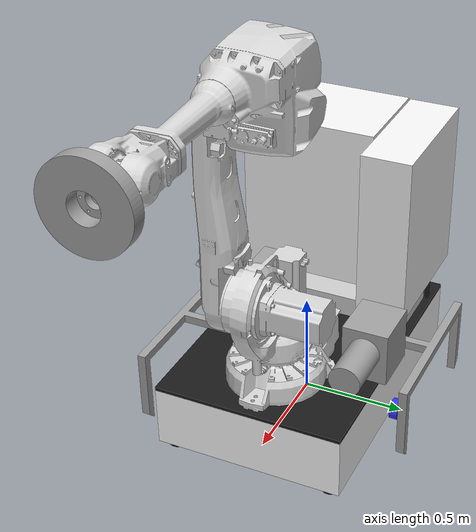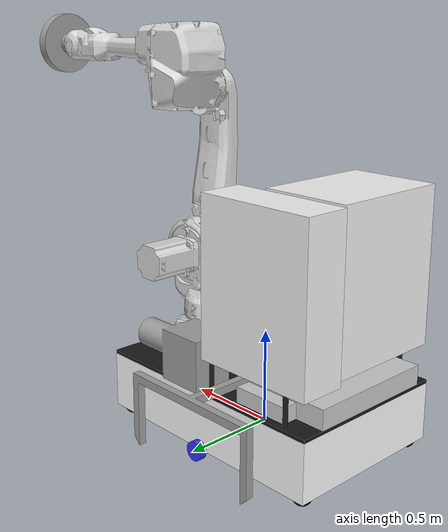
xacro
<?xml version="1.0"?>
<robot xmlns:xacro="http://www.ros.org/wiki/xacro" name="abb_arm">
    <gazebo>
        <plugin name="gz::sim::systems::DiffDrive" filename="gz-sim-diff-drive-system">
            <!-- Wheel Information -->
            <left_joint>left_wheel_joint</left_joint>
            <right_joint>right_wheel_joint</right_joint>
            <wheel_separation>1.23</wheel_separation>
            <wheel_radius>0.05</wheel_radius>

            <!-- Limits -->
            <max_linear_acceleration>0.66</max_linear_acceleration>

            <!-- Input -->
            <topic>/cmd_vel</topic>

            <!-- Output -->
            <frame_id>odom</frame_id>
            <child_frame_id>base_link</child_frame_id>
            <odom_topic>/odom</odom_topic>
            <odom_publisher_frequency>100</odom_publisher_frequency>

            <tf_topic>/tf</tf_topic>

        </plugin>

        <plugin name="gz::sim::systems::JointStatePublisher" filename="gz-sim-joint-state-publisher-system">
            <topic>/joint_states</topic>
            <joint_name>left_wheel_joint</joint_name>
            <joint_name>right_wheel_joint</joint_name>
        </plugin>
    </gazebo>

    <link name="base_link"/>

    <!-- Include color macros -->
    <xacro:include filename="$(find abb_arm_description)/urdf/colours.xacro"/>

    <!-- Include inertial macros -->
    <xacro:include filename="$(find abb_arm_description)/urdf/inertial_macros.xacro"/>

    <!-- Include platform -->

    <!-- Include abb arm -->
    <xacro:include filename="$(find abb_arm_description)/urdf/abb_arm.xacro"/>

    <!-- Include major components -->
    <xacro:include filename="$(find abb_arm_description)/urdf/major_components.xacro"/>

    <!-- Include mir platform -->
    <xacro:include filename="$(find abb_arm_description)/urdf/mir1350_rough.xacro"/>

    <!-- Include ros2_control -->
    <xacro:include filename="$(find abb_arm_description)/urdf/ros2_control.xacro"/>
</robot>

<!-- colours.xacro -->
<robot xmlns:xacro="http://www.ros.org/wiki/xacro">
    <material name="white">
        <color rgba="1 1 1 1"/>
    </material>

    <material name="orange">
        <color rgba="1 0.3 0.1 1"/>
    </material>

    <material name="blue">
        <color rgba="0.2 0.2 1 1"/>
    </material>

    <material name="black">
        <color rgba="0 0 0 1"/>
    </material>

    <material name="red">
        <color rgba="1 0 0 1"/>
    </material>
</robot>

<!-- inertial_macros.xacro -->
<robot xmlns:xacro="http://www.ros.org/wiki/xacro" >

    <!-- Specify some standard inertial calculations https://en.wikipedia.org/wiki/List_of_moments_of_inertia -->
    <!-- These make use of xacro's mathematical functionality -->

    <xacro:macro name="inertial_sphere" params="mass radius *origin">
        <inertial>
            <xacro:insert_block name="origin"/>
            <mass value="${mass}" />
            <inertia ixx="${(2/5) * mass * (radius*radius)}" ixy="0.0" ixz="0.0"
                    iyy="${(2/5) * mass * (radius*radius)}" iyz="0.0"
                    izz="${(2/5) * mass * (radius*radius)}" />
        </inertial>
    </xacro:macro>

    <xacro:macro name="inertial_box" params="mass x y z *origin">
        <inertial>
            <xacro:insert_block name="origin"/>
            <mass value="${mass}" />
            <inertia ixx="${(1/12) * mass * (y*y+z*z)}" ixy="0.0" ixz="0.0"
                    iyy="${(1/12) * mass * (x*x+z*z)}" iyz="0.0"
                    izz="${(1/12) * mass * (x*x+y*y)}" />
        </inertial>
    </xacro:macro>

    <xacro:macro name="inertial_cylinder" params="mass length radius *origin">
        <inertial>
            <xacro:insert_block name="origin"/>
            <mass value="${mass}" />
            <inertia ixx="${(1/12) * mass * (3*radius*radius + length*length)}" ixy="0.0" ixz="0.0"
                    iyy="${(1/12) * mass * (3*radius*radius + length*length)}" iyz="0.0"
                    izz="${(1/2) * mass * (radius*radius)}" />
        </inertial>
    </xacro:macro>

</robot>

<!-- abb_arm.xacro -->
<!-- Generated using onshape-to-robot -->
<!-- Onshape document_id f0912ad76048a2e7ed12d76c -->
<robot xmlns:xacro="http://www.ros.org/wiki/xacro" name="abb_arm">
  <!-- Link irb4600_60kg_205_base_cad_rev05_v1 -->
  <link name="irb4600_60kg_205_base_cad_rev05_v1">
    <inertial>
      <origin xyz="-0.321182 -0.0353324 -0.305087" rpy="0 0 0"/>
      <mass value="81.759"/>
      <inertia ixx="1.14136" ixy="0.113422" ixz="-0.0184365" iyy="2.30969" iyz="-0.00337268" izz="3.14598"/>
    </inertial>
    <!-- Part irb4600_60kg_205_base_cad_rev05_v1 -->
    <visual>
      <origin xyz="-0.223542 -0.043641 -0.379314" rpy="0.00762494 -0.0869335 -0.0875981"/>
      <geometry>
        <mesh filename="file://$(find abb_arm_description)/assets/abb_arm/irb4600_60kg_205_base_cad_rev05_v1.stl"/>
      </geometry>
      <material name="irb4600_60kg_205_base_cad_rev05_v1_material">
        <color rgba="0.843137 0.843137 0.843137 1"/>
      </material>
    </visual>
    <collision>
      <origin xyz="-0.223542 -0.043641 -0.379314" rpy="0.00762494 -0.0869335 -0.0875981"/>
      <geometry>
        <mesh filename="file://$(find abb_arm_description)/assets/abb_arm/irb4600_60kg_205_base_cad_rev05_v1.stl"/>
      </geometry>
    </collision>
  </link>
  <!-- Link irb4600_60kg_205_link1_cad_rev04_v1 -->
  <link name="irb4600_60kg_205_link1_cad_rev04_v1">
    <inertial>
      <origin xyz="0.0770381 -0.0246901 -0.240698" rpy="0 0 0"/>
      <mass value="114.511"/>
      <inertia ixx="3.00349" ixy="0.261576" ixz="0.808083" iyy="3.91333" iyz="-0.279337" izz="3.13182"/>
    </inertial>
    <!-- Part irb4600_60kg_205_link1_cad_rev04_v1 -->
    <visual>
      <origin xyz="4.32987e-15 7.77156e-16 0.1595" rpy="-3.14159 2.77556e-17 -1.09504e-17"/>
      <geometry>
        <mesh filename="file://$(find abb_arm_description)/assets/abb_arm/irb4600_60kg_205_link1_cad_rev04_v1.stl"/>
      </geometry>
      <material name="irb4600_60kg_205_link1_cad_rev04_v1_material">
        <color rgba="0.843137 0.843137 0.843137 1"/>
      </material>
    </visual>
    <collision>
      <origin xyz="4.32987e-15 7.77156e-16 0.1595" rpy="-3.14159 2.77556e-17 -1.09504e-17"/>
      <geometry>
        <mesh filename="file://$(find abb_arm_description)/assets/abb_arm/irb4600_60kg_205_link1_cad_rev04_v1.stl"/>
      </geometry>
    </collision>
  </link>
  <!-- Link irb4600_60kg_205_link2_cad_rev04_v1 -->
  <link name="irb4600_60kg_205_link2_cad_rev04_v1">
    <inertial>
      <origin xyz="9.44147e-05 -0.396751 -0.0480536" rpy="0 0 0"/>
      <mass value="75.819"/>
      <inertia ixx="5.85954" ixy="-0.000649047" ixz="-6.58104e-08" iyy="0.434415" iyz="-0.198731" izz="6.07168"/>
    </inertial>
    <!-- Part irb4600_60kg_205_link2_cad_rev04_v1 -->
    <visual>
      <origin xyz="-0.175 0.495 0.1225" rpy="1.5708 -3.41524e-17 -1.38778e-17"/>
      <geometry>
        <mesh filename="file://$(find abb_arm_description)/assets/abb_arm/irb4600_60kg_205_link2_cad_rev04_v1.stl"/>
      </geometry>
      <material name="irb4600_60kg_205_link2_cad_rev04_v1_material">
        <color rgba="0.843137 0.843137 0.843137 1"/>
      </material>
    </visual>
    <collision>
      <origin xyz="-0.175 0.495 0.1225" rpy="1.5708 -3.41524e-17 -1.38778e-17"/>
      <geometry>
        <mesh filename="file://$(find abb_arm_description)/assets/abb_arm/irb4600_60kg_205_link2_cad_rev04_v1.stl"/>
      </geometry>
    </collision>
  </link>
  <!-- Link irb4600_60kg_205_link3_cad_rev04_v1 -->
  <link name="irb4600_60kg_205_link3_cad_rev04_v1">
    <inertial>
      <origin xyz="0.0407131 0.118762 -0.198467" rpy="0 0 0"/>
      <mass value="138.137"/>
      <inertia ixx="3.06752" ixy="-0.317854" ixz="-0.199072" iyy="3.08575" iyz="0.0381456" izz="3.75533"/>
    </inertial>
    <!-- Part irb4600_60kg_205_link3_cad_rev04_v1 -->
    <visual>
      <origin xyz="-0.175 -1.395 -0.1492" rpy="-1.5708 3.84892e-17 -1.38778e-17"/>
      <geometry>
        <mesh filename="file://$(find abb_arm_description)/assets/abb_arm/irb4600_60kg_205_link3_cad_rev04_v1.stl"/>
      </geometry>
      <material name="irb4600_60kg_205_link3_cad_rev04_v1_material">
        <color rgba="0.843137 0.843137 0.843137 1"/>
      </material>
    </visual>
    <collision>
      <origin xyz="-0.175 -1.395 -0.1492" rpy="-1.5708 3.84892e-17 -1.38778e-17"/>
      <geometry>
        <mesh filename="file://$(find abb_arm_description)/assets/abb_arm/irb4600_60kg_205_link3_cad_rev04_v1.stl"/>
      </geometry>
    </collision>
  </link>
  <!-- Link irb4600_60kg_205_link4_cad_rev04_v1 -->
  <link name="irb4600_60kg_205_link4_cad_rev04_v1">
    <inertial>
      <origin xyz="-0.00197572 0.00284651 -0.393132" rpy="0 0 0"/>
      <mass value="29.998"/>
      <inertia ixx="1.24629" ixy="-7.78483e-05" ixz="-0.0152437" iyy="1.29389" iyz="0.00617296" izz="0.143764"/>
    </inertial>
    <!-- Part irb4600_60kg_205_link4_cad_rev04_v1 -->
    <visual>
      <origin xyz="-2.08167e-16 1.57 0.5151" rpy="1.5708 1.5708 0"/>
      <geometry>
        <mesh filename="file://$(find abb_arm_description)/assets/abb_arm/irb4600_60kg_205_link4_cad_rev04_v1.stl"/>
      </geometry>
      <material name="irb4600_60kg_205_link4_cad_rev04_v1_material">
        <color rgba="0.843137 0.843137 0.843137 1"/>
      </material>
    </visual>
    <collision>
      <origin xyz="-2.08167e-16 1.57 0.5151" rpy="1.5708 1.5708 0"/>
      <geometry>
        <mesh filename="file://$(find abb_arm_description)/assets/abb_arm/irb4600_60kg_205_link4_cad_rev04_v1.stl"/>
      </geometry>
    </collision>
  </link>
  <!-- Link irb4600_60kg_205_link5_cad_rev04_v1 -->
  <link name="irb4600_60kg_205_link5_cad_rev04_v1">
    <inertial>
      <origin xyz="-0.00105077 0.00040032 -0.0635485" rpy="0 0 0"/>
      <mass value="4.058"/>
      <inertia ixx="0.00817587" ixy="-4.61387e-05" ixz="2.08952e-06" iyy="0.00900393" iyz="1.38141e-05" izz="0.0084813"/>
    </inertial>
    <!-- Part irb4600_60kg_205_link5_cad_rev04_v1 -->
    <visual>
      <origin xyz="-1.135 -1.57 -0.067" rpy="-1.5708 -3.79471e-18 -1.38778e-17"/>
      <geometry>
        <mesh filename="file://$(find abb_arm_description)/assets/abb_arm/irb4600_60kg_205_link5_cad_rev04_v1.stl"/>
      </geometry>
      <material name="irb4600_60kg_205_link5_cad_rev04_v1_material">
        <color rgba="0.843137 0.843137 0.843137 1"/>
      </material>
    </visual>
    <collision>
      <origin xyz="-1.135 -1.57 -0.067" rpy="-1.5708 -3.79471e-18 -1.38778e-17"/>
      <geometry>
        <mesh filename="file://$(find abb_arm_description)/assets/abb_arm/irb4600_60kg_205_link5_cad_rev04_v1.stl"/>
      </geometry>
    </collision>
  </link>
  <!-- Link irb4600_60kg_205_link6_cad_rev04_v1 -->
  <link name="irb4600_60kg_205_link6_cad_rev04_v1">
    <inertial>
      <origin xyz="-3.63266e-05 0.000333341 -0.119747" rpy="0 0 0"/>
      <mass value="5.718"/>
      <inertia ixx="0.0494659" ixy="7.19253e-06" ixz="1.27941e-05" iyy="0.0494712" iyz="2.70911e-05" izz="0.0870346"/>
    </inertial>
    <!-- Part polisher -->
    <visual>
      <origin xyz="8.04912e-16 1.5704 1.17" rpy="1.5708 1.5708 0"/>
      <geometry>
        <mesh filename="file://$(find abb_arm_description)/assets/abb_arm/polisher.stl"/>
      </geometry>
      <material name="polisher_material">
        <color rgba="0.627451 0.627451 0.627451 1"/>
      </material>
    </visual>
    <collision>
      <origin xyz="8.04912e-16 1.5704 1.17" rpy="1.5708 1.5708 0"/>
      <geometry>
        <mesh filename="file://$(find abb_arm_description)/assets/abb_arm/polisher.stl"/>
      </geometry>
    </collision>
    <!-- Part irb4600_60kg_205_link6_cad_rev04_v1 -->
    <visual>
      <origin xyz="1.66533e-16 1.57 1.2" rpy="1.5708 1.5708 0"/>
      <geometry>
        <mesh filename="file://$(find abb_arm_description)/assets/abb_arm/irb4600_60kg_205_link6_cad_rev04_v1.stl"/>
      </geometry>
      <material name="irb4600_60kg_205_link6_cad_rev04_v1_material">
        <color rgba="0.501961 0.501961 0.501961 1"/>
      </material>
    </visual>
    <collision>
      <origin xyz="1.66533e-16 1.57 1.2" rpy="1.5708 1.5708 0"/>
      <geometry>
        <mesh filename="file://$(find abb_arm_description)/assets/abb_arm/irb4600_60kg_205_link6_cad_rev04_v1.stl"/>
      </geometry>
    </collision>
    <!-- Part polisher_2 -->
    <visual>
      <origin xyz="7.35523e-16 1.57 1.2" rpy="1.5708 1.5708 0"/>
      <geometry>
        <mesh filename="file://$(find abb_arm_description)/assets/abb_arm/polisher__2.stl"/>
      </geometry>
      <material name="polisher_2_material">
        <color rgba="0.627451 0.627451 0.627451 1"/>
      </material>
    </visual>
    <collision>
      <origin xyz="7.35523e-16 1.57 1.2" rpy="1.5708 1.5708 0"/>
      <geometry>
        <mesh filename="file://$(find abb_arm_description)/assets/abb_arm/polisher__2.stl"/>
      </geometry>
    </collision>
  </link>
  <!-- Joint from irb4600_60kg_205_link5_cad_rev04_v1 to irb4600_60kg_205_link6_cad_rev04_v1 -->
  <joint name="joint6" type="revolute">
    <origin xyz="0.065 -2.22045e-16 -0.067" rpy="-3.14159 1.5708 0"/>
    <parent link="irb4600_60kg_205_link5_cad_rev04_v1"/>
    <child link="irb4600_60kg_205_link6_cad_rev04_v1"/>
    <axis xyz="0 0 1"/>
    <limit effort="10000" velocity="10" lower="-3.141592653589793" upper="3.141592653589793"/>
  </joint>
  <!-- Joint from irb4600_60kg_205_link4_cad_rev04_v1 to irb4600_60kg_205_link5_cad_rev04_v1 -->
  <joint name="joint5" type="revolute">
    <origin xyz="-0.067 0 -0.6199" rpy="-3.14159 1.5708 0"/>
    <parent link="irb4600_60kg_205_link4_cad_rev04_v1"/>
    <child link="irb4600_60kg_205_link5_cad_rev04_v1"/>
    <axis xyz="0 0 1"/>
    <limit effort="10000" velocity="10" lower="-3.141592653589793" upper="3.141592653589793"/>
  </joint>
  <!-- Joint from irb4600_60kg_205_link3_cad_rev04_v1 to irb4600_60kg_205_link4_cad_rev04_v1 -->
  <joint name="joint4" type="revolute">
    <origin xyz="0.3401 0.175 -0.1492" rpy="3.14159 1.5708 0"/>
    <parent link="irb4600_60kg_205_link3_cad_rev04_v1"/>
    <child link="irb4600_60kg_205_link4_cad_rev04_v1"/>
    <axis xyz="0 0 1"/>
    <limit effort="10000" velocity="10" lower="-3.141592653589793" upper="3.141592653589793"/>
  </joint>
  <!-- Joint from irb4600_60kg_205_link2_cad_rev04_v1 to irb4600_60kg_205_link3_cad_rev04_v1 -->
  <joint name="joint3" type="revolute">
    <origin xyz="1.38778e-17 -0.9 -0.0267" rpy="-3.14159 3.06829e-17 1.63897e-14"/>
    <parent link="irb4600_60kg_205_link2_cad_rev04_v1"/>
    <child link="irb4600_60kg_205_link3_cad_rev04_v1"/>
    <axis xyz="0 0 1"/>
    <limit effort="10000" velocity="10" lower="-3.141592653589793" upper="3.141592653589793"/>
  </joint>
  <!-- Joint from irb4600_60kg_205_link1_cad_rev04_v1 to irb4600_60kg_205_link2_cad_rev04_v1 -->
  <joint name="joint2" type="revolute">
    <origin xyz="0.175 0.1225 -0.3355" rpy="1.5708 -1.6237e-15 -1.44199e-17"/>
    <parent link="irb4600_60kg_205_link1_cad_rev04_v1"/>
    <child link="irb4600_60kg_205_link2_cad_rev04_v1"/>
    <axis xyz="0 0 1"/>
    <limit effort="10000" velocity="10" lower="-3.141592653589793" upper="3.141592653589793"/>
  </joint>
  <!-- Joint from irb4600_60kg_205_base_cad_rev05_v1 to irb4600_60kg_205_link1_cad_rev04_v1 -->
  <joint name="joint1" type="revolute">
    <origin xyz="-0.237443 -0.043641 -0.220421" rpy="-3.13397 -0.0869335 -0.0875981"/>
    <parent link="irb4600_60kg_205_base_cad_rev05_v1"/>
    <child link="irb4600_60kg_205_link1_cad_rev04_v1"/>
    <axis xyz="0 0 1"/>
    <limit effort="10000" velocity="10" lower="-3.141592653589793" upper="3.141592653589793"/>
  </joint>
  <!-- Joint from base_link to base_cad -->
  <!-- Joint from base_plate to base_cad -->
  <joint name="base_plate_base_cad_joint" type="fixed">
    <origin xyz="0.62 0.08 0.391" rpy="0 0.08 0.1"/>
    <parent link="base_plate__mild_steel"/>
    <child link="irb4600_60kg_205_base_cad_rev05_v1"/>
  </joint>
</robot>

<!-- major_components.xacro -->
<!-- Generated using onshape-to-robot -->
<!-- Onshape document_id f0912ad76048a2e7ed12d76c -->
<robot xmlns:xacro="http://wiki.ros.org/xacro" name="major_components">
  <!-- Link base_plate__mild_steel -->
  <link name="base_plate__mild_steel">
    <inertial>
      <origin xyz="-0.295151 0.0518164 0.226115" rpy="0 0 0"/>
      <mass value="591"/>
      <inertia ixx="84.5177" ixy="-4.82016" ixz="9.4146" iyy="98.5566" iyz="-7.20458" izz="93.259"/>
    </inertial>
    <!-- Part right_leg -->
    <visual>
      <origin xyz="0 0 0" rpy="0 -0 0"/>
      <geometry>
        <mesh filename="file://$(find abb_arm_description)/assets/major_components/right_leg.stl"/>
      </geometry>
      <material name="right_leg_material">
        <color rgba="0.627451 0.627451 0.627451 1"/>
      </material>
    </visual>
    <collision>
      <origin xyz="0 0 0" rpy="0 -0 0"/>
      <geometry>
        <mesh filename="file://$(find abb_arm_description)/assets/major_components/right_leg.stl"/>
      </geometry>
    </collision>
    <!-- Part vacuum_pump -->
    <visual>
      <origin xyz="0 0 0" rpy="0 -0 0"/>
      <geometry>
        <mesh filename="file://$(find abb_arm_description)/assets/major_components/vacuum_pump.stl"/>
      </geometry>
      <material name="vacuum_pump_material">
        <color rgba="0.627451 0.627451 0.627451 1"/>
      </material>
    </visual>
    <collision>
      <origin xyz="0 0 0" rpy="0 -0 0"/>
      <geometry>
        <mesh filename="file://$(find abb_arm_description)/assets/major_components/vacuum_pump.stl"/>
      </geometry>
    </collision>
    <!-- Part system_controller -->
    <visual>
      <origin xyz="0 0 0" rpy="0 -0 0"/>
      <geometry>
        <mesh filename="file://$(find abb_arm_description)/assets/major_components/system_controller.stl"/>
      </geometry>
      <material name="system_controller_material">
        <color rgba="0.960784 0.960784 0.964706 1"/>
      </material>
    </visual>
    <collision>
      <origin xyz="0 0 0" rpy="0 -0 0"/>
      <geometry>
        <mesh filename="file://$(find abb_arm_description)/assets/major_components/system_controller.stl"/>
      </geometry>
    </collision>
    <!-- Part compressor -->
    <visual>
      <origin xyz="0 0 0" rpy="0 -0 0"/>
      <geometry>
        <mesh filename="file://$(find abb_arm_description)/assets/major_components/compressor.stl"/>
      </geometry>
      <material name="compressor_material">
        <color rgba="0.627451 0.627451 0.627451 1"/>
      </material>
    </visual>
    <collision>
      <origin xyz="0 0 0" rpy="0 -0 0"/>
      <geometry>
        <mesh filename="file://$(find abb_arm_description)/assets/major_components/compressor.stl"/>
      </geometry>
    </collision>
    <!-- Part abb_controller -->
    <visual>
      <origin xyz="0 0 0" rpy="0 -0 0"/>
      <geometry>
        <mesh filename="file://$(find abb_arm_description)/assets/major_components/abb_controller.stl"/>
      </geometry>
      <material name="abb_controller_material">
        <color rgba="0.960784 0.960784 0.964706 1"/>
      </material>
    </visual>
    <collision>
      <origin xyz="0 0 0" rpy="0 -0 0"/>
      <geometry>
        <mesh filename="file://$(find abb_arm_description)/assets/major_components/abb_controller.stl"/>
      </geometry>
    </collision>
    <!-- Part counter_weight_2 -->
    <visual>
      <origin xyz="0 0 0" rpy="0 -0 0"/>
      <geometry>
        <mesh filename="file://$(find abb_arm_description)/assets/major_components/counter_weight_2.stl"/>
      </geometry>
      <material name="counter_weight_2_material">
        <color rgba="0.796078 0.796078 0.796078 1"/>
      </material>
    </visual>
    <collision>
      <origin xyz="0 0 0" rpy="0 -0 0"/>
      <geometry>
        <mesh filename="file://$(find abb_arm_description)/assets/major_components/counter_weight_2.stl"/>
      </geometry>
    </collision>
    <!-- Part base_plate__mild_steel -->
    <visual>
      <origin xyz="0 0 0" rpy="0 -0 0"/>
      <geometry>
        <mesh filename="file://$(find abb_arm_description)/assets/major_components/base_plate__mild_steel.stl"/>
      </geometry>
      <material name="base_plate__mild_steel_material">
        <color rgba="0.1 0.1 0.1 1"/>
      </material>
    </visual>
    <collision>
      <origin xyz="0 0 0" rpy="0 -0 0"/>
      <geometry>
        <mesh filename="file://$(find abb_arm_description)/assets/major_components/base_plate__mild_steel.stl"/>
      </geometry>
    </collision>
    <!-- Part counter_weight_1 -->
    <visual>
      <origin xyz="0 0 0" rpy="0 -0 0"/>
      <geometry>
        <mesh filename="file://$(find abb_arm_description)/assets/major_components/counter_weight_1.stl"/>
      </geometry>
      <material name="counter_weight_1_material">
        <color rgba="0.796078 0.796078 0.796078 1"/>
      </material>
    </visual>
    <collision>
      <origin xyz="0 0 0" rpy="0 -0 0"/>
      <geometry>
        <mesh filename="file://$(find abb_arm_description)/assets/major_components/counter_weight_1.stl"/>
      </geometry>
    </collision>
    <!-- Part left_leg -->
    <visual>
      <origin xyz="0 0 0" rpy="0 -0 0"/>
      <geometry>
        <mesh filename="file://$(find abb_arm_description)/assets/major_components/left_leg.stl"/>
      </geometry>
      <material name="left_leg_material">
        <color rgba="0.627451 0.627451 0.627451 1"/>
      </material>
    </visual>
    <collision>
      <origin xyz="0 0 0" rpy="0 -0 0"/>
      <geometry>
        <mesh filename="file://$(find abb_arm_description)/assets/major_components/left_leg.stl"/>
      </geometry>
    </collision>
  </link>

  <joint name="base_plate_mild_steel_joint" type="fixed">
    <parent link="chassis"/>
    <child link="base_plate__mild_steel"/>
    <origin xyz="0 0 0.282" rpy="0 0 0"/>
  </joint>
</robot>

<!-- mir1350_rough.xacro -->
<robot xmlns:xacro="http://www.ros.org/wiki/xacro">

    <!-- Include LIDAR -->
    <xacro:include filename="$(find abb_arm_description)/urdf/lidar.xacro"/>

    <joint name="base_footprint_joint" type="fixed">
        <parent link="base_link"/>
        <child link="base_footprint"/>
        <origin xyz="0 0 0" rpy="0 0 0"/>
    </joint>

    <link name="base_footprint">
    </link>

    <!-- Chassis -->
    <joint name="chassis_joint" type="fixed">
        <parent link="base_link"/>
        <child link="chassis"/>
        <origin xyz="0 0 0"/>
    </joint>
    <link name="chassis">
        <visual>
            <origin xyz="0 0 0.1485" rpy="0 0 0"/>
            <geometry>
                <box size="1.35 0.91 0.297"/>
            </geometry>
            <material name="white"/>
        </visual>
        <collision>
            <origin xyz="0 0 0.15" rpy="0 0 0"/>
            <geometry>
                <box size="1.35 0.91 0.297"/>
            </geometry>
        </collision>
       <xacro:inertial_box mass="244" x="1.35" y="0.91" z="0.297">
            <origin xyz="0 0 0.1485" rpy="0 0 0"/>
        </xacro:inertial_box>
    </link>

    <!-- Left Wheel -->
    <joint name="left_wheel_joint" type="continuous">
        <parent link="base_link"/>
        <child link="left_wheel"/>
        <origin xyz="0 0.475 0" rpy="-${pi/2} 0 0"/>
        <axis xyz="0 0 1"/>
        <limit effort="100" velocity="10"/>
    </joint>
    <link name="left_wheel">
        <visual>
            <geometry>
                <cylinder length="0.04" radius="0.05"/>
            </geometry>
            <material name="blue"/>
        </visual>
        <collision>
            <geometry>
                <cylinder length="0.04" radius="0.05"/>
            </geometry>
        </collision>
        <xacro:inertial_cylinder mass="1" length="0.04" radius="0.05">
            <origin xyz="0 0 0" rpy="0 0 0"/>
        </xacro:inertial_cylinder>
    </link>

    <!-- Right Wheel -->
    <joint name="right_wheel_joint" type="continuous">
        <parent link="base_link"/>
        <child link="right_wheel"/>
        <origin xyz="0 -0.475 0" rpy="${pi/2} 0 0"/>
        <axis xyz="0 0 -1"/>
        <limit effort="100" velocity="10"/>
    </joint>
    <link name="right_wheel">
        <visual>
            <geometry>
                <cylinder length="0.04" radius="0.05"/>
            </geometry>
            <material name="blue"/>
        </visual>
        <collision>
            <geometry>
                <cylinder length="0.04" radius="0.05"/>
            </geometry>
        </collision>
        <xacro:inertial_cylinder mass="1" length="0.04" radius="0.05">
            <origin xyz="0 0 0" rpy="0 0 0"/>
        </xacro:inertial_cylinder>
    </link>

    <!-- Caster Wheels -->
    <joint name="top_left_caster_wheel_joint" type="fixed">
        <parent link="chassis"/>
        <child link="top_left_caster_wheel"/>
        <origin xyz="0.615 0.39 0" rpy="0 0 0"/>
    </joint>
    <link name="top_left_caster_wheel">
        <visual>
            <geometry>
                <sphere radius="0.05"/>
            </geometry>
            <material name="black"/>
        </visual>
        <collision>
            <geometry>
                <sphere radius="0.05"/>
            </geometry>
        </collision>
        <xacro:inertial_sphere mass="2" radius="0.05">
            <origin xyz="0 0 0" rpy="0 0 0"/>
        </xacro:inertial_sphere>
    </link>
    <gazebo reference="top_left_caster_wheel">
        <mu1 value="0.001" />
        <mu2 value="0.001" />
    </gazebo>

    <joint name="top_right_caster_wheel_joint" type="fixed">
        <parent link="chassis"/>
        <child link="top_right_caster_wheel"/>
        <origin xyz="0.615 -0.39 0" rpy="0 0 0"/>
    </joint>
    <link name="top_right_caster_wheel">
        <visual>
            <geometry>
                <sphere radius="0.05"/>
            </geometry>
            <material name="black"/>
        </visual>
        <collision>
            <geometry>
                <sphere radius="0.05"/>
            </geometry>
        </collision>
        <xacro:inertial_sphere mass="2" radius="0.05">
            <origin xyz="0 0 0" rpy="0 0 0"/>
        </xacro:inertial_sphere>
    </link>
    <gazebo reference="top_right_caster_wheel">
        <mu1 value="0.001" />
        <mu2 value="0.001" />
    </gazebo>

    <joint name="bottom_left_caster_wheel_joint" type="fixed">
        <parent link="chassis"/>
        <child link="bottom_left_caster_wheel"/>
        <origin xyz="-0.615 0.39 0" rpy="0 0 0"/>
    </joint>
    <link name="bottom_left_caster_wheel">
        <visual>
            <geometry>
                <sphere radius="0.05"/>
            </geometry>
            <material name="black"/>
        </visual>
        <collision>
            <geometry>
                <sphere radius="0.05"/>
            </geometry>
        </collision>
        <xacro:inertial_sphere mass="2" radius="0.05">
            <origin xyz="0 0 0" rpy="0 0 0"/>
        </xacro:inertial_sphere>
    </link>
    <gazebo reference="bottom_left_caster_wheel">
        <mu1 value="0.001" />
        <mu2 value="0.001" />
    </gazebo>

    <joint name="bottom_right_caster_wheel_joint" type="fixed">
        <parent link="chassis"/>
        <child link="bottom_right_caster_wheel"/>
        <origin xyz="-0.615 -0.39 0" rpy="0 0 0"/>
    </joint>
    <link name="bottom_right_caster_wheel">
        <visual>
            <geometry>
                <sphere radius="0.05"/>
            </geometry>
            <material name="black"/>
        </visual>
        <collision>
            <geometry>
                <sphere radius="0.05"/>
            </geometry>
        </collision>
        <xacro:inertial_sphere mass="2" radius="0.05">
            <origin xyz="0 0 0" rpy="0 0 0"/>
        </xacro:inertial_sphere>
    </link>
    <gazebo reference="bottom_right_caster_wheel">
        <mu1 value="0.001" />
        <mu2 value="0.001" />
    </gazebo>

</robot>

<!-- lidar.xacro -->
<robot xmlns:xacro="http://www.ros.org/wiki/xacro">
    <joint name="laser_joint" type="fixed">
        <parent link="chassis"/>
        <child link="laser_frame"/>
        <origin xyz="0.1 0 0.175" rpy="0 0 0"/>
    </joint>

    <link name="laser_frame">
        <visual>
            <geometry>
                <cylinder length="0.04" radius="0.05"/>
            </geometry>
            <material name="red"/>
        </visual>
        <collision>
            <geometry>
                <cylinder length="0.04" radius="0.05"/>
            </geometry>
        </collision>
        <xacro:inertial_cylinder mass="0.1" length="0.04" radius="0.05">
            <origin xyz="0 0 0" rpy="0 0 0"/>
        </xacro:inertial_cylinder>
    </link>

    <gazebo>
        <plugin
            filename="gz-sim-sensors-system"
            name="gz::sim::systems::Sensors">
            <render_engine>ogre2</render_engine>
        </plugin>
    </gazebo>

    <gazebo reference="laser_frame">

        <sensor name="laser" type="gpu_lidar">
            <always_on>1</always_on>
            <pose>0 0 0 0 0 0</pose>
            <visualize>true</visualize>
            <update_rate>10</update_rate>
            <ray>
                <scan>
                    <horizontal>
                        <samples>360</samples>
                        <min_angle>-3.14</min_angle>
                        <max_angle>3.14</max_angle>
                    </horizontal>
                </scan>
                <range>
                    <min>0.3</min>
                    <max>12.0</max>
                </range>
            </ray>

            <topic>scan</topic>

            <gz_frame_id>laser_frame</gz_frame_id>
        </sensor>
    </gazebo>
</robot>
